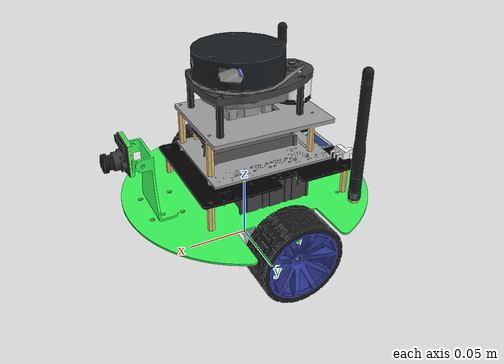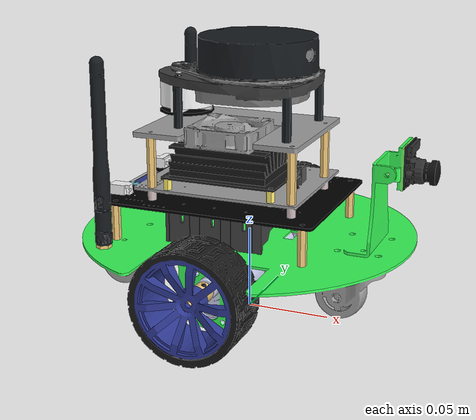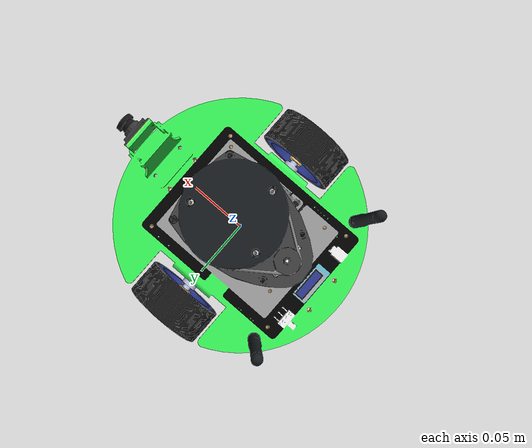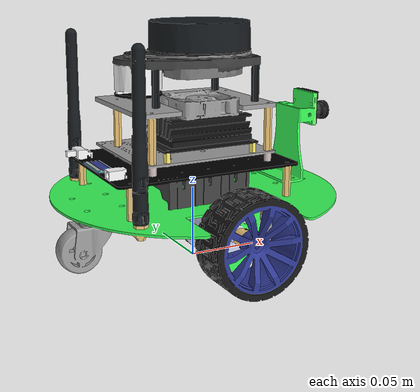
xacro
<?xml version="1.0"?>
<robot name="jetbot" xmlns:xacro="http://www.ros.org/wiki/xacro">
  <xacro:property name="wheel_radius" value="0.033"/>
  <xacro:property name="wheel_sep" value="0.1648"/>
  <xacro:property name="ball_radius" value="0.016" />
  <xacro:property name="ball_mass"   value="0.025" />

  <link name="base_footprint"/>
  <joint name="base_footprint_to_base_link" type="fixed">
    <parent link="base_footprint"/>
    <child link="base_link"/>
    <origin xyz="0 0 0.05" rpy="0 0 0"/>
  </joint>

  <link name="base_link">
    <!-- *.dae -->
    <visual>
      <origin xyz="0 0 0" rpy="0 0 0"/>
      <geometry><mesh filename="package://jetbot_description/mesh/base.dae" scale="1 1 1"/></geometry>
    </visual>

    <!-- Kollision -->
    <collision>
    <origin xyz="0 0 0.036" rpy="0 0 0"/>
      <geometry><cylinder radius="0.105" length="0.162"/></geometry>
    </collision>

    <inertial>
    <mass value="0.7"/> <!-- z.B. 0.7 kg Base + 0.05+0.05 Wheels + 0.02+0.02 Sensors = 0.84 kg -->
    <origin xyz="0 0 0" rpy="0 0 0"/>
    <inertia
      ixx="3.9e-3"
      iyy="3.9e-3"
      izz="4.4e-3"
      ixy="0" ixz="0" iyz="0"/>
  </inertial>
  </link>

  <!-- Wheels, joints needed for diff-drive -->
  <link name="left_wheel">
    <visual>
      <origin xyz="0 0 0" rpy="-1.5708 0 0"/>
      <geometry><mesh filename="package://jetbot_description/mesh/wheel.dae" scale="1 1 1"/></geometry>
    </visual>
    <collision>
      <origin xyz="0 0 0" rpy="-1.5708 0 0"/>
      <geometry><cylinder radius="0.033" length="0.03"/></geometry>
    </collision>
    <inertial>
      <mass value="0.05"/>
      <origin xyz="0 0 0" rpy="0 0 0"/>
      <inertia ixx="1e-4" iyy="1e-4" izz="1e-4" ixy="0" ixz="0" iyz="0"/>
    </inertial>
  </link>
  <joint name="left_wheel_joint" type="continuous">
    <parent link="base_link"/>
    <child link="left_wheel"/>
    <origin xyz="0 0.0824 -0.015" rpy="0 0 0"/>
    <axis xyz="0 1 0"/>
  </joint>

  <link name="right_wheel">
    <visual>
      <origin xyz="0 0 0" rpy="1.570 0 0"/>
      <geometry><mesh filename="package://jetbot_description/mesh/wheel.dae" scale="1 1 1"/></geometry>
    </visual>
      <collision>
      <origin xyz="0 0 0" rpy="1.5708 0 0"/>
      <geometry><cylinder radius="0.033" length="0.03"/></geometry>
    </collision>
    <inertial>
      <mass value="0.05"/>
      <origin xyz="0 0 0" rpy="0 0 0"/>
      <inertia ixx="1e-4" iyy="1e-4" izz="1e-4" ixy="0" ixz="0" iyz="0"/>
    </inertial>
  </link>
  <joint name="right_wheel_joint" type="continuous">
    <parent link="base_link"/>
    <child link="right_wheel"/>
    <origin xyz="0 -0.0824 -0.015" rpy="0 0 0"/>
    <axis xyz="0 1 0"/>
  </joint>

  <!-- Castor wheels -->
  <link name="front_wheel">
    <collision>
      <origin xyz="0 0 0" rpy="0 0 0"/>
      <geometry>
        <sphere radius="${ball_radius}"/>
      </geometry>
    </collision>

    <inertial>
        <mass value="${ball_mass}" />
        <origin xyz="0 0 0" />
        <inertia ixx="1e-5" iyy="1e-5" izz="1e-5" ixy="0" ixz="0" iyz="0"/>
    </inertial>
  </link>
  <joint name="front_wheel_joint" type="fixed">
    <parent link="base_link"/>
    <child link="front_wheel"/>
    <origin xyz="-0.072 0 -0.032" rpy="0 0 0"/>
  </joint>

  <link name="rear_wheel">
    <collision>
      <origin xyz="0 0 0" rpy="0 0 0"/>
      <geometry>
        <sphere radius="${ball_radius}"/>
      </geometry>
    </collision>
    <inertial>
        <mass value="${ball_mass}" />
        <origin xyz="0 0 0" />
        <inertia ixx="1e-5" iyy="1e-5" izz="1e-5" ixy="0" ixz="0" iyz="0"/>
    </inertial>
  </link>
  <joint name="rear_wheel_joint" type="fixed">
    <parent link="base_link"/>
    <child link="rear_wheel"/>
    <origin xyz="0.072 0 -0.0319" rpy="0 0 0"/>
  </joint>

    <!-- Camera -->
  <link name="camera_link">
    <visual>
      <origin xyz="0 0 0.0040" rpy="3.14159 3.14159 1.5707"/>
      <geometry><mesh filename="package://jetbot_description/mesh/cam.dae" scale="1 1 1"/></geometry>
    </visual>
    <collision>
      <origin xyz="0.012 0 -0.0005" rpy="0 1.5707 0"/>
      <geometry><cylinder radius="0.008" length="0.012"/></geometry>
    </collision>
    <inertial>
      <mass value="0.02"/>
      <origin xyz="0 0 0" rpy="0 0 0"/>
      <inertia ixx="5e-5" iyy="5e-5" izz="5e-5" ixy="0" ixz="0" iyz="0"/>
    </inertial>
  </link>
  <joint name="camera_joint" type="fixed">
    <parent link="base_link"/>
    <child link="camera_link"/>
    <origin xyz="0.0955 0 0.0470" rpy="0 0 0"/>
  </joint>

  <gazebo reference="front_wheel">
    <mu1>0.01</mu1>
    <mu2>0.01</mu2>
    <material>Gazebo/Orange</material>
  </gazebo>

  <gazebo reference="rear_wheel">
    <mu1>0.01</mu1>
    <mu2>0.01</mu2>
    <material>Gazebo/Orange</material>
  </gazebo>

   <gazebo reference="left_wheel">
        <mu1 value="5.0"/>
        <mu2 value="5.0"/>
  </gazebo>
  <gazebo reference="right_wheel">
        <mu1 value="5.0"/>
        <mu2 value="5.0"/>
  </gazebo>

  <!-- LiDAR -->
  <link name="laser_link">
    <visual>
      <origin xyz="0 0 0" rpy="0 0 0"/>
      <geometry><mesh filename="package://jetbot_description/mesh/lidar.dae" scale="1 1 1"/></geometry>
    </visual>
    <collision>
      <origin xyz="0 0 0" rpy="0 0 0"/>
      <geometry><cylinder radius="0.01" length="0.01"/></geometry>
    </collision>
    <inertial>
      <mass value="0.02"/>
      <origin xyz="0 0 0" rpy="0 0 0"/>
      <inertia ixx="5e-5" iyy="5e-5" izz="5e-5" ixy="0" ixz="0" iyz="0"/>
    </inertial>
  </link>
  <joint name="laser_joint" type="fixed">
    <parent link="base_link"/>
    <child link="laser_link"/>
    <origin xyz="0 0 0" rpy="0 0 0"/>
  </joint>

  <!-- Gazebo Plugins -->
  <gazebo>
    <plugin name="diff_drive" filename="libgazebo_ros_diff_drive.so">
      <updateRate>100</updateRate>
      <wheelTorque>5</wheelTorque>
      <wheelAcceleration>6</wheelAcceleration>
      <leftJoint>left_wheel_joint</leftJoint>
      <rightJoint>right_wheel_joint</rightJoint>
      <commandTopic>cmd_vel</commandTopic>
      <odometryTopic>odom</odometryTopic>
      <odometryFrame>odom</odometryFrame>
      <odometrySource>world</odometrySource> <!-- world: ground truth provided by Gazebo -->
      <publishOdomTF>true</publishOdomTF>
      <publishWheelJointState>true</publishWheelJointState>
      <publishWheelTF>true</publishWheelTF>
      <publishTf>true</publishTf>
      <robotBaseFrame>base_footprint</robotBaseFrame>
      <rosDebugLevel>na</rosDebugLevel>
      <wheelSeparation>${wheel_sep}</wheelSeparation>
      <wheelDiameter>${2*wheel_radius}</wheelDiameter>
    </plugin>
  </gazebo>

  <gazebo reference="laser_link">
    <sensor name="RPLidar A1" type="ray">
      <visualize>false</visualize>
      <always_on>true</always_on>
      <update_rate>12</update_rate>
      <ray>
        <scan>
          <horizontal>
            <samples>720</samples>
            <resolution>1</resolution>
            <min_angle>-3.14159</min_angle>
            <max_angle>3.14159</max_angle>
          </horizontal>
        </scan>
        <range>
          <min>0.15</min>
          <max>12.0</max>
        </range>
        <noise>
          <type>gaussian</type>
          <mean>0.0</mean>
          <stddev>0.005</stddev>
        </noise>
      </ray>
      <plugin name="gazebo_ros_laser" filename="libgazebo_ros_laser.so">
        <topicName>/scan</topicName>
        <frameName>laser_link</frameName>
      </plugin>
    </sensor>
  </gazebo>

  <gazebo reference="camera_link">
    <sensor name="IMX219-160 Camera" type="camera">
      <always_on>true</always_on>
      <update_rate>20</update_rate>
      <visualize>false</visualize>
      <camera>
        <!-- Diagonal FOV: 160 deg on 1/4 inch sensor-->
        <horizontal_fov>1.047</horizontal_fov>
        <image>
          <width>640</width>
          <height>480</height>
          <format>R8G8B8</format>
        </image>
        <clip>
          <near>0.017</near>
          <far>20</far>
        </clip>
        <noise>
          <type>gaussian</type>
          <mean>0.0</mean>
          <stddev>0.002</stddev>
        </noise>
      </camera>
      <plugin name="gazebo_ros_camera" filename="libgazebo_ros_camera.so">
        <alwaysOn>true</alwaysOn>
        <updateRate>20</updateRate>
        <cameraName>csi_cam_0</cameraName>
        <imageTopicName>image_raw</imageTopicName>
        <cameraInfoTopicName>camera_info</cameraInfoTopicName>
        <frameName>camera_link</frameName>
        <hackBaseline>0.0</hackBaseline>
        <!-- Distortion coefficients for 640 x 480 -->
        <distortionK1>-0.3099359644894822</distortionK1>
        <distortionK2>0.08151662693197913</distortionK2>
        <distortionK3>0.0006660916041993709</distortionK3>
        <distortionT1>0.001461474111496217</distortionT1>
        <distortionT2>0.0</distortionT2>
      </plugin>
    </sensor>
  </gazebo>
</robot>
